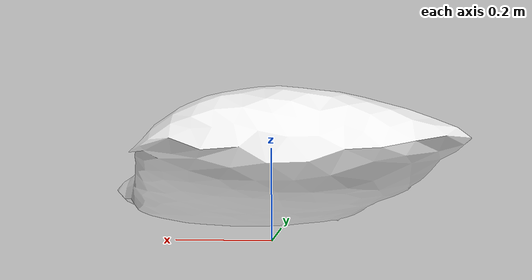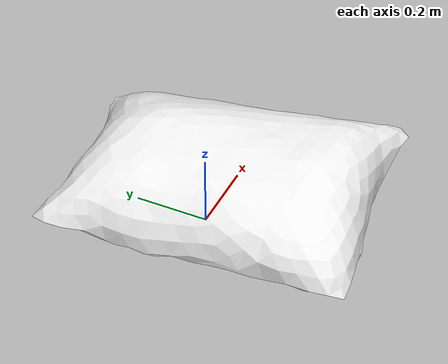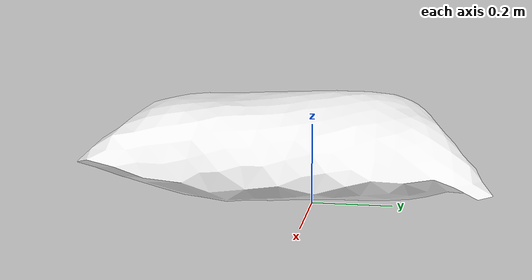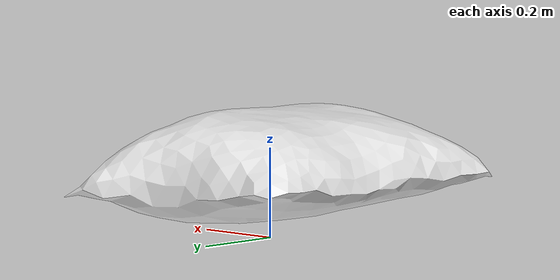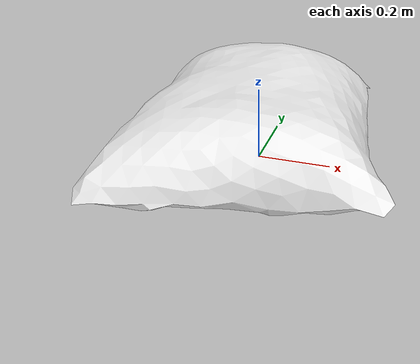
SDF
<?xml version="1.0" ?><sdf version="1.5"><model name="coffee-sack2">
<link name="link">
<pose>0 0 0 0 0 0</pose>
<inertial>
<pose>0.019602 -0.0495925 0.168259 0 0 0</pose>
<mass>70</mass>
<inertia>
<ixx>4.84838</ixx>
<ixy>0</ixy><iyy>3.22593</iyy>
<ixz>0</ixz><iyz>0</iyz><izz>7.4223</izz>
</inertia>
</inertial>
<visual name="visual">
<pose>0 0 0 0 0 0</pose>
<geometry><mesh><uri>model://coffee-sack2/meshes/coffee-sack2.dae</uri></mesh></geometry>
<material><script><uri>file://media/materials/scripts/gazebo.material</uri><name>Gazebo/WhiteGlow</name></script></material></visual>
<collision name="collision"><pose>0 0 0 0 0 0</pose><geometry><mesh><uri>model://coffee-sack2/meshes/coffee-sack2.dae</uri></mesh></geometry>
<surface><friction><ode><mu>1.000000</mu><mu2>1.000000</mu2></ode></friction></surface>
</collision></link></model></sdf>
